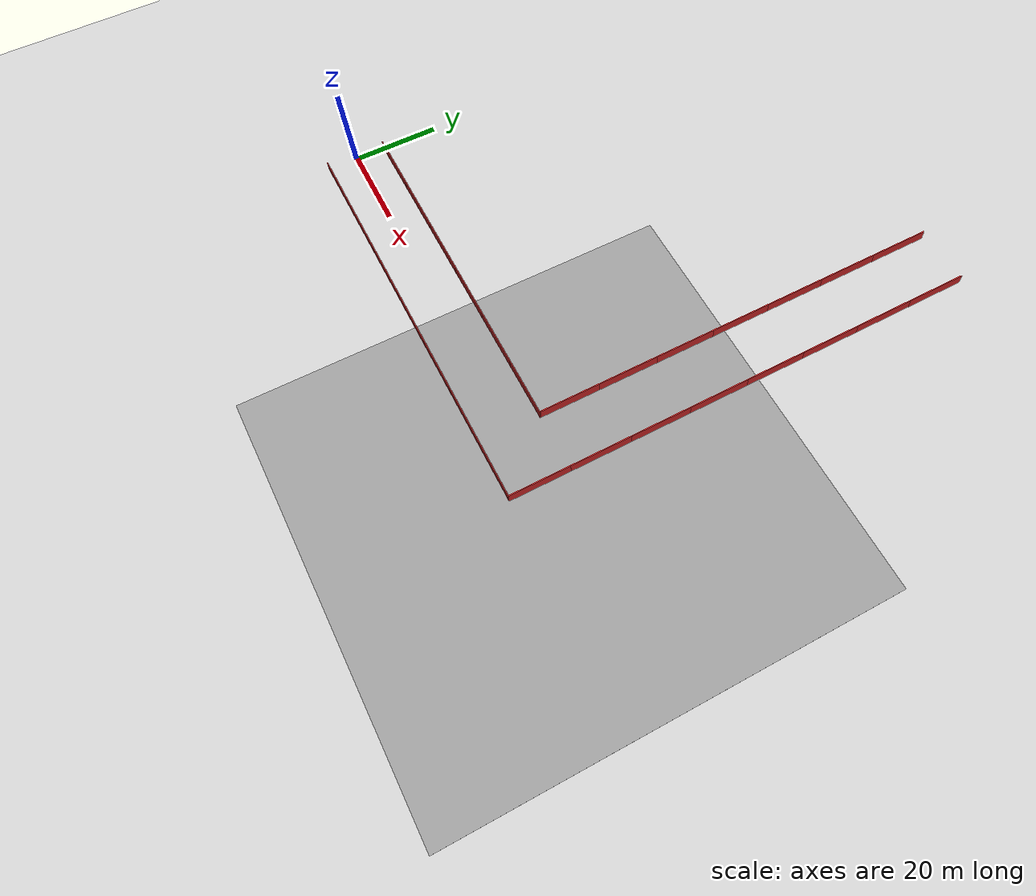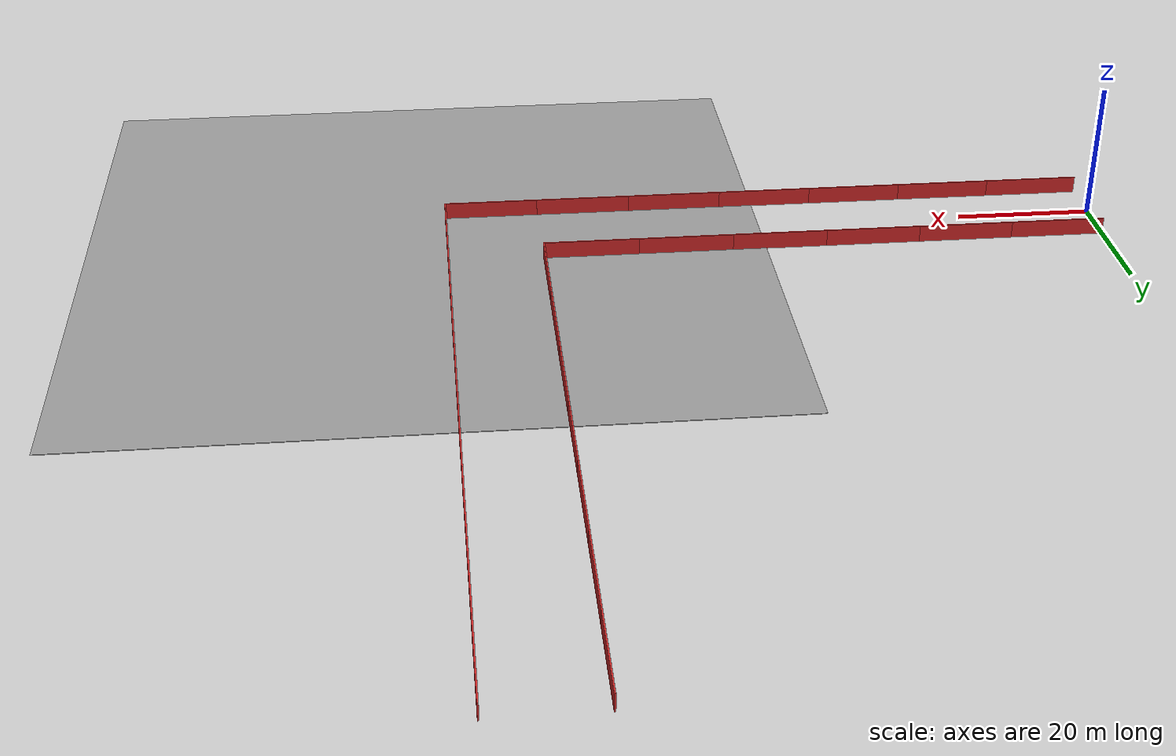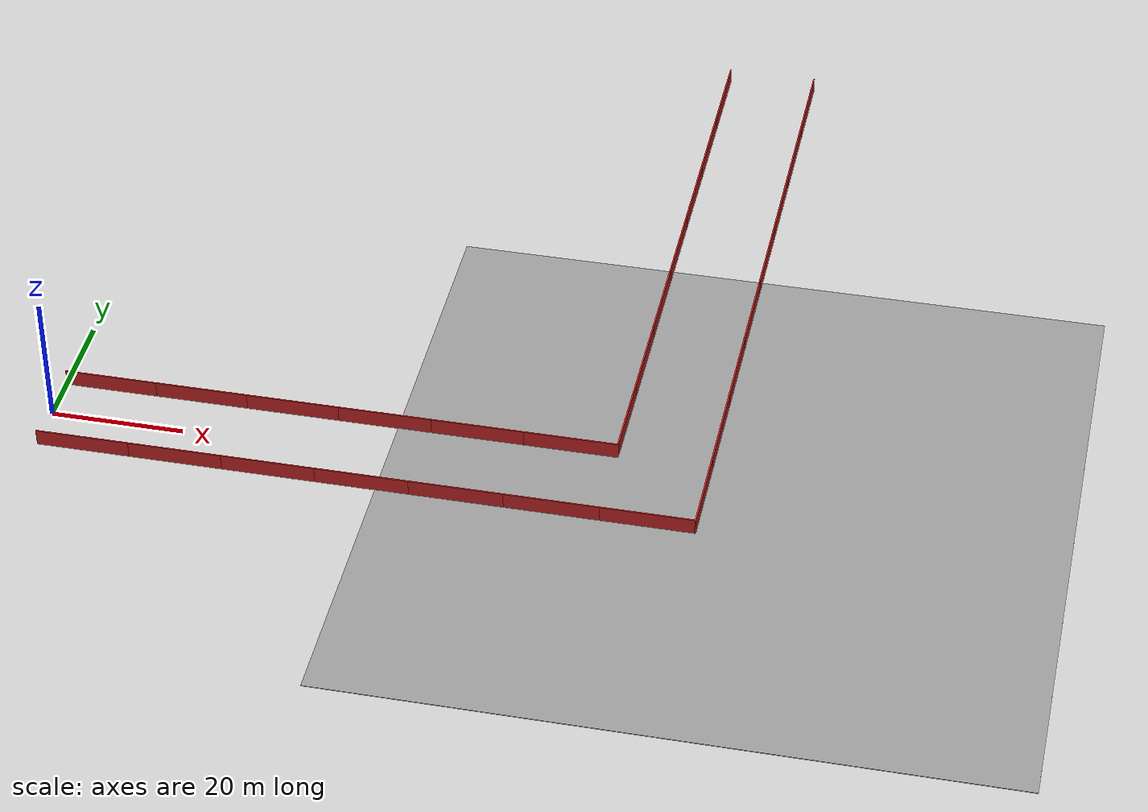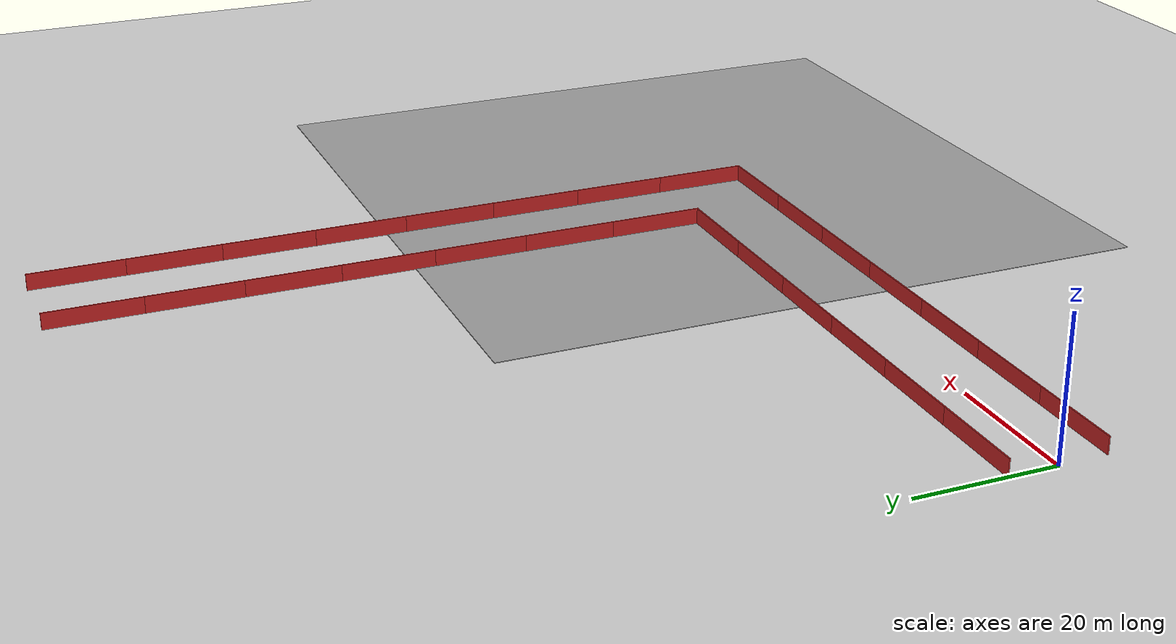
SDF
<sdf version="1.4">
 <world name="default">
  <model name="staright_14m">
   <link name="Wall_26">
    <collision name="Wall_26_Collision">
     <geometry><box><size>14 0.2 2.5</size></box></geometry>
     <pose>0 0 1.25 0 -0 0</pose>
    </collision>
    <visual name="Wall_26_Visual">
     <pose>0 0 1.25 0 -0 0</pose>
     <geometry><box><size>14 0.2 2.5</size></box></geometry>
     <material>
      <script>
       <uri>model://materials/scripts</uri>
       <uri>model://materials/textures</uri>
       <name>vrc/red_wall</name>
      </script>
     </material>
    </visual>
    <velocity_decay><linear>0</linear><angular>0</angular></velocity_decay>
    <pose>0 -7 0 0 -0 0</pose>
   </link>
   <link name="Wall_28">
    <collision name="Wall_28_Collision">
     <geometry><box><size>14 0.2 2.5</size></box></geometry>
     <pose>0 0 1.25 0 -0 0</pose>
    </collision>
    <visual name="Wall_28_Visual">
     <pose>0 0 1.25 0 -0 0</pose>
     <geometry><box><size>14 0.2 2.5</size></box></geometry>
     <material>
      <script>
       <uri>model://materials/scripts</uri>
       <uri>model://materials/textures</uri>
       <name>vrc/red_wall</name>
      </script>
     </material>
    </visual>
    <velocity_decay><linear>0</linear><angular>0</angular></velocity_decay>
    <pose>0 7 0 0 -0 0</pose>
   </link>
   <static>1</static>
   <pose>7 0 0 0 -0 0</pose>
  </model>
  <model name="staright_28m_3">
   <link name="Wall_26">
    <collision name="Wall_26_Collision">
     <geometry><box><size>14 0.2 2.5</size></box></geometry>
     <pose>0 0 1.25 0 -0 0</pose>
    </collision>
    <visual name="Wall_26_Visual">
     <pose>0 0 1.25 0 -0 0</pose>
     <geometry><box><size>14 0.2 2.5</size></box></geometry>
     <material>
      <script>
       <uri>model://materials/scripts</uri>
       <uri>model://materials/textures</uri>
       <name>vrc/red_wall</name>
      </script>
     </material>
    </visual>
    <velocity_decay><linear>0</linear><angular>0</angular></velocity_decay>
    <pose>-7 -7 0 0 -0 0</pose>
   </link>
   <link name="Wall_28">
    <collision name="Wall_28_Collision">
     <geometry><box><size>14 0.2 2.5</size></box></geometry>
     <pose>0 0 1.25 0 -0 0</pose>
    </collision>
    <visual name="Wall_28_Visual">
     <pose>0 0 1.25 0 -0 0</pose>
     <geometry><box><size>14 0.2 2.5</size></box></geometry>
     <material>
      <script>
       <uri>model://materials/scripts</uri>
       <uri>model://materials/textures</uri>
       <name>vrc/red_wall</name>
      </script>
     </material>
    </visual>
    <velocity_decay><linear>0</linear><angular>0</angular></velocity_decay>
    <pose>-7 7 0 0 -0 0</pose>
   </link>
   <static>1</static>
   <link name="Wall_27">
    <collision name="Wall_26_Collision">
     <geometry><box><size>14 0.2 2.5</size></box></geometry>
     <pose>0 0 1.25 0 -0 0</pose>
    </collision>
    <visual name="Wall_26_Visual">
     <pose>0 0 1.25 0 -0 0</pose>
     <geometry><box><size>14 0.2 2.5</size></box></geometry>
     <material>
      <script>
       <uri>model://materials/scripts</uri>
       <uri>model://materials/textures</uri>
       <name>vrc/red_wall</name>
      </script>
     </material>
    </visual>
    <velocity_decay><linear>0</linear><angular>0</angular></velocity_decay>
    <pose>7 -7 0 0 -0 0</pose>
   </link>
   <link name="Wall_29">
    <collision name="Wall_28_Collision">
     <geometry><box><size>14 0.2 2.5</size></box></geometry>
     <pose>0 0 1.25 0 -0 0</pose>
    </collision>
    <visual name="Wall_28_Visual">
     <pose>0 0 1.25 0 -0 0</pose>
     <geometry><box><size>14 0.2 2.5</size></box></geometry>
     <material>
      <script>
       <uri>model://materials/scripts</uri>
       <uri>model://materials/textures</uri>
       <name>vrc/red_wall</name>
      </script>
     </material>
    </visual>
    <velocity_decay><linear>0</linear><angular>0</angular></velocity_decay>
    <pose>7 7 0 0 -0 0</pose>
   </link>
   <static>1</static>
   <pose>91 35 0 0 0 -1.5708</pose>
  </model>
  <model name="staright_28m">
   <link name="Wall_26">
    <collision name="Wall_26_Collision">
     <geometry><box><size>14 0.2 2.5</size></box></geometry>
     <pose>0 0 1.25 0 -0 0</pose>
    </collision>
    <visual name="Wall_26_Visual">
     <pose>0 0 1.25 0 -0 0</pose>
     <geometry><box><size>14 0.2 2.5</size></box></geometry>
     <material>
      <script>
       <uri>model://materials/scripts</uri>
       <uri>model://materials/textures</uri>
       <name>vrc/red_wall</name>
      </script>
     </material>
    </visual>
    <velocity_decay><linear>0</linear><angular>0</angular></velocity_decay>
    <pose>-7 -7 0 0 -0 0</pose>
   </link>
   <link name="Wall_28">
    <collision name="Wall_28_Collision">
     <geometry><box><size>14 0.2 2.5</size></box></geometry>
     <pose>0 0 1.25 0 -0 0</pose>
    </collision>
    <visual name="Wall_28_Visual">
     <pose>0 0 1.25 0 -0 0</pose>
     <geometry><box><size>14 0.2 2.5</size></box></geometry>
     <material>
      <script>
       <uri>model://materials/scripts</uri>
       <uri>model://materials/textures</uri>
       <name>vrc/red_wall</name>
      </script>
     </material>
    </visual>
    <velocity_decay><linear>0</linear><angular>0</angular></velocity_decay>
    <pose>-7 7 0 0 -0 0</pose>
   </link>
   <static>1</static>
   <link name="Wall_27">
    <collision name="Wall_26_Collision">
     <geometry><box><size>14 0.2 2.5</size></box></geometry>
     <pose>0 0 1.25 0 -0 0</pose>
    </collision>
    <visual name="Wall_26_Visual">
     <pose>0 0 1.25 0 -0 0</pose>
     <geometry><box><size>14 0.2 2.5</size></box></geometry>
     <material>
      <script>
       <uri>model://materials/scripts</uri>
       <uri>model://materials/textures</uri>
       <name>vrc/red_wall</name>
      </script>
     </material>
    </visual>
    <velocity_decay><linear>0</linear><angular>0</angular></velocity_decay>
    <pose>7 -7 0 0 -0 0</pose>
   </link>
   <link name="Wall_29">
    <collision name="Wall_28_Collision">
     <geometry><box><size>14 0.2 2.5</size></box></geometry>
     <pose>0 0 1.25 0 -0 0</pose>
    </collision>
    <visual name="Wall_28_Visual">
     <pose>0 0 1.25 0 -0 0</pose>
     <geometry><box><size>14 0.2 2.5</size></box></geometry>
     <material>
      <script>
       <uri>model://materials/scripts</uri>
       <uri>model://materials/textures</uri>
       <name>vrc/red_wall</name>
      </script>
     </material>
    </visual>
    <velocity_decay><linear>0</linear><angular>0</angular></velocity_decay>
    <pose>7 7 0 0 -0 0</pose>
   </link>
   <static>1</static>
   <pose>28 0 0 0 -0 0</pose>
  </model>
  <model name="staright_28m_0">
   <link name="Wall_26">
    <collision name="Wall_26_Collision">
     <geometry><box><size>14 0.2 2.5</size></box></geometry>
     <pose>0 0 1.25 0 -0 0</pose>
    </collision>
    <visual name="Wall_26_Visual">
     <pose>0 0 1.25 0 -0 0</pose>
     <geometry><box><size>14 0.2 2.5</size></box></geometry>
     <material>
      <script>
       <uri>model://materials/scripts</uri>
       <uri>model://materials/textures</uri>
       <name>vrc/red_wall</name>
      </script>
     </material>
    </visual>
    <velocity_decay><linear>0</linear><angular>0</angular></velocity_decay>
    <pose>-7 -7 0 0 -0 0</pose>
   </link>
   <link name="Wall_28">
    <collision name="Wall_28_Collision">
     <geometry><box><size>14 0.2 2.5</size></box></geometry>
     <pose>0 0 1.25 0 -0 0</pose>
    </collision>
    <visual name="Wall_28_Visual">
     <pose>0 0 1.25 0 -0 0</pose>
     <geometry><box><size>14 0.2 2.5</size></box></geometry>
     <material>
      <script>
       <uri>model://materials/scripts</uri>
       <uri>model://materials/textures</uri>
       <name>vrc/red_wall</name>
      </script>
     </material>
    </visual>
    <velocity_decay><linear>0</linear><angular>0</angular></velocity_decay>
    <pose>-7 7 0 0 -0 0</pose>
   </link>
   <static>1</static>
   <link name="Wall_27">
    <collision name="Wall_26_Collision">
     <geometry><box><size>14 0.2 2.5</size></box></geometry>
     <pose>0 0 1.25 0 -0 0</pose>
    </collision>
    <visual name="Wall_26_Visual">
     <pose>0 0 1.25 0 -0 0</pose>
     <geometry><box><size>14 0.2 2.5</size></box></geometry>
     <material>
      <script>
       <uri>model://materials/scripts</uri>
       <uri>model://materials/textures</uri>
       <name>vrc/red_wall</name>
      </script>
     </material>
    </visual>
    <velocity_decay><linear>0</linear><angular>0</angular></velocity_decay>
    <pose>7 -7 0 0 -0 0</pose>
   </link>
   <link name="Wall_29">
    <collision name="Wall_28_Collision">
     <geometry><box><size>14 0.2 2.5</size></box></geometry>
     <pose>0 0 1.25 0 -0 0</pose>
    </collision>
    <visual name="Wall_28_Visual">
     <pose>0 0 1.25 0 -0 0</pose>
     <geometry><box><size>14 0.2 2.5</size></box></geometry>
     <material>
      <script>
       <uri>model://materials/scripts</uri>
       <uri>model://materials/textures</uri>
       <name>vrc/red_wall</name>
      </script>
     </material>
    </visual>
    <velocity_decay><linear>0</linear><angular>0</angular></velocity_decay>
    <pose>7 7 0 0 -0 0</pose>
   </link>
   <static>1</static>
   <pose>56 0 0 0 -0 0</pose>
  </model>
  <model name="right_angle_turn_2">
   <link name="Wall_0">
    <collision name="Wall_0_Collision">
     <geometry><box><size>14.1 0.2 2.5</size></box></geometry>
     <pose>0 0 1.25 0 -0 0</pose>
    </collision>
    <visual name="Wall_0_Visual">
     <pose>0 0 1.25 0 -0 0</pose>
     <geometry><box><size>14.1 0.2 2.5</size></box></geometry>
     <material>
      <script>
       <uri>model://materials/scripts</uri>
       <uri>model://materials/textures</uri>
       <name>vrc/red_wall_x4</name>
      </script>
     </material>
    </visual>
    <velocity_decay><linear>0</linear><angular>0</angular></velocity_decay>
    <pose>0 -6.95 0 0 0 -1.5708</pose>
   </link>
   <link name="Wall_10">
    <collision name="Wall_10_Collision">
     <geometry><box><size>13.8 0.2 2.5</size></box></geometry>
     <pose>0 0 1.25 0 -0 0</pose>
    </collision>
    <visual name="Wall_10_Visual">
     <pose>0 0 1.25 0 -0 0</pose>
     <geometry><box><size>13.8 0.2 2.5</size></box></geometry>
     <material>
      <script>
       <uri>model://materials/scripts</uri>
       <uri>model://materials/textures</uri>
       <name>vrc/red_wall_x4</name>
      </script>
     </material>
    </visual>
    <velocity_decay><linear>0</linear><angular>0</angular></velocity_decay>
    <pose>14 7 0 0 0 -1.5708</pose>
   </link>
   <link name="Wall_2">
    <collision name="Wall_2_Collision">
     <geometry><box><size>13.9 0.2 2.5</size></box></geometry>
     <pose>0 0 1.25 0 -0 0</pose>
    </collision>
    <visual name="Wall_2_Visual">
     <pose>0 0 1.25 0 -0 0</pose>
     <geometry><box><size>13.9 0.2 2.5</size></box></geometry>
     <material>
      <script>
       <uri>model://materials/scripts</uri>
       <uri>model://materials/textures</uri>
       <name>vrc/red_wall_x4</name>
      </script>
     </material>
    </visual>
    <velocity_decay><linear>0</linear><angular>0</angular></velocity_decay>
    <pose>-7.05 0 0 0 -0 3.14159</pose>
   </link>
   <link name="Wall_4">
    <collision name="Wall_4_Collision">
     <geometry><box><size>14.1 0.2 2.5</size></box></geometry>
     <pose>0 0 1.25 0 -0 0</pose>
    </collision>
    <visual name="Wall_4_Visual">
     <pose>0 0 1.25 0 -0 0</pose>
     <geometry><box><size>14.1 0.2 2.5</size></box></geometry>
     <material>
      <script>
       <uri>model://materials/scripts</uri>
       <uri>model://materials/textures</uri>
       <name>vrc/red_wall_x4</name>
      </script>
     </material>
    </visual>
    <velocity_decay><linear>0</linear><angular>0</angular></velocity_decay>
    <pose>14 -6.95 0 0 -0 1.5708</pose>
   </link>
   <link name="Wall_6">
    <collision name="Wall_6_Collision">
     <geometry><box><size>14.1 0.2 2.5</size></box></geometry>
     <pose>0 0 1.25 0 -0 0</pose>
    </collision>
    <visual name="Wall_6_Visual">
     <pose>0 0 1.25 0 -0 0</pose>
     <geometry><box><size>14.1 0.2 2.5</size></box></geometry>
     <material>
      <script>
       <uri>model://materials/scripts</uri>
       <uri>model://materials/textures</uri>
       <name>vrc/red_wall_x4</name>
      </script>
     </material>
    </visual>
    <velocity_decay><linear>0</linear><angular>0</angular></velocity_decay>
    <pose>-6.95 14 0 0 -0 0</pose>
   </link>
   <link name="Wall_8">
    <collision name="Wall_8_Collision">
     <geometry><box><size>14 0.2 2.5</size></box></geometry>
     <pose>0 0 1.25 0 -0 0</pose>
    </collision>
    <visual name="Wall_8_Visual">
     <pose>0 0 1.25 0 -0 0</pose>
     <geometry><box><size>14 0.2 2.5</size></box></geometry>
     <material>
      <script>
       <uri>model://materials/scripts</uri>
       <uri>model://materials/textures</uri>
       <name>vrc/red_wall_x4</name>
      </script>
     </material>
    </visual>
    <velocity_decay><linear>0</linear><angular>0</angular></velocity_decay>
    <pose>7.1 14 0 0 -0 0</pose>
   </link>
   <static>1</static>
   <pose>84 7.00001 0 0 0 -1.57079</pose>
  </model>
  <model name="staright_28m_4">
   <link name="Wall_26">
    <collision name="Wall_26_Collision">
     <geometry><box><size>14 0.2 2.5</size></box></geometry>
     <pose>0 0 1.25 0 -0 0</pose>
    </collision>
    <visual name="Wall_26_Visual">
     <pose>0 0 1.25 0 -0 0</pose>
     <geometry><box><size>14 0.2 2.5</size></box></geometry>
     <material>
      <script>
       <uri>model://materials/scripts</uri>
       <uri>model://materials/textures</uri>
       <name>vrc/red_wall</name>
      </script>
     </material>
    </visual>
    <velocity_decay><linear>0</linear><angular>0</angular></velocity_decay>
    <pose>-7 -7 0 0 -0 0</pose>
   </link>
   <link name="Wall_28">
    <collision name="Wall_28_Collision">
     <geometry><box><size>14 0.2 2.5</size></box></geometry>
     <pose>0 0 1.25 0 -0 0</pose>
    </collision>
    <visual name="Wall_28_Visual">
     <pose>0 0 1.25 0 -0 0</pose>
     <geometry><box><size>14 0.2 2.5</size></box></geometry>
     <material>
      <script>
       <uri>model://materials/scripts</uri>
       <uri>model://materials/textures</uri>
       <name>vrc/red_wall</name>
      </script>
     </material>
    </visual>
    <velocity_decay><linear>0</linear><angular>0</angular></velocity_decay>
    <pose>-7 7 0 0 -0 0</pose>
   </link>
   <static>1</static>
   <link name="Wall_27">
    <collision name="Wall_26_Collision">
     <geometry><box><size>14 0.2 2.5</size></box></geometry>
     <pose>0 0 1.25 0 -0 0</pose>
    </collision>
    <visual name="Wall_26_Visual">
     <pose>0 0 1.25 0 -0 0</pose>
     <geometry><box><size>14 0.2 2.5</size></box></geometry>
     <material>
      <script>
       <uri>model://materials/scripts</uri>
       <uri>model://materials/textures</uri>
       <name>vrc/red_wall</name>
      </script>
     </material>
    </visual>
    <velocity_decay><linear>0</linear><angular>0</angular></velocity_decay>
    <pose>7 -7 0 0 -0 0</pose>
   </link>
   <link name="Wall_29">
    <collision name="Wall_28_Collision">
     <geometry><box><size>14 0.2 2.5</size></box></geometry>
     <pose>0 0 1.25 0 -0 0</pose>
    </collision>
    <visual name="Wall_28_Visual">
     <pose>0 0 1.25 0 -0 0</pose>
     <geometry><box><size>14 0.2 2.5</size></box></geometry>
     <material>
      <script>
       <uri>model://materials/scripts</uri>
       <uri>model://materials/textures</uri>
       <name>vrc/red_wall</name>
      </script>
     </material>
    </visual>
    <velocity_decay><linear>0</linear><angular>0</angular></velocity_decay>
    <pose>7 7 0 0 -0 0</pose>
   </link>
   <static>1</static>
   <pose>91 63 0 0 0 -1.5708</pose>
  </model>
  <model name="staright_28m_7">
   <link name="Wall_26">
    <collision name="Wall_26_Collision">
     <geometry><box><size>14 0.2 2.5</size></box></geometry>
     <pose>0 0 1.25 0 -0 0</pose>
    </collision>
    <visual name="Wall_26_Visual">
     <pose>0 0 1.25 0 -0 0</pose>
     <geometry><box><size>14 0.2 2.5</size></box></geometry>
     <material>
      <script>
       <uri>model://materials/scripts</uri>
       <uri>model://materials/textures</uri>
       <name>vrc/red_wall</name>
      </script>
     </material>
    </visual>
    <velocity_decay><linear>0</linear><angular>0</angular></velocity_decay>
    <pose>-7 -7 0 0 -0 0</pose>
   </link>
   <link name="Wall_28">
    <collision name="Wall_28_Collision">
     <geometry><box><size>14 0.2 2.5</size></box></geometry>
     <pose>0 0 1.25 0 -0 0</pose>
    </collision>
    <visual name="Wall_28_Visual">
     <pose>0 0 1.25 0 -0 0</pose>
     <geometry><box><size>14 0.2 2.5</size></box></geometry>
     <material>
      <script>
       <uri>model://materials/scripts</uri>
       <uri>model://materials/textures</uri>
       <name>vrc/red_wall</name>
      </script>
     </material>
    </visual>
    <velocity_decay><linear>0</linear><angular>0</angular></velocity_decay>
    <pose>-7 7 0 0 -0 0</pose>
   </link>
   <static>1</static>
   <link name="Wall_27">
    <collision name="Wall_26_Collision">
     <geometry><box><size>14 0.2 2.5</size></box></geometry>
     <pose>0 0 1.25 0 -0 0</pose>
    </collision>
    <visual name="Wall_26_Visual">
     <pose>0 0 1.25 0 -0 0</pose>
     <geometry><box><size>14 0.2 2.5</size></box></geometry>
     <material>
      <script>
       <uri>model://materials/scripts</uri>
       <uri>model://materials/textures</uri>
       <name>vrc/red_wall</name>
      </script>
     </material>
    </visual>
    <velocity_decay><linear>0</linear><angular>0</angular></velocity_decay>
    <pose>7 -7 0 0 -0 0</pose>
   </link>
   <link name="Wall_29">
    <collision name="Wall_28_Collision">
     <geometry><box><size>14 0.2 2.5</size></box></geometry>
     <pose>0 0 1.25 0 -0 0</pose>
    </collision>
    <visual name="Wall_28_Visual">
     <pose>0 0 1.25 0 -0 0</pose>
     <geometry><box><size>14 0.2 2.5</size></box></geometry>
     <material>
      <script>
       <uri>model://materials/scripts</uri>
       <uri>model://materials/textures</uri>
       <name>vrc/red_wall</name>
      </script>
     </material>
    </visual>
    <velocity_decay><linear>0</linear><angular>0</angular></velocity_decay>
    <pose>7 7 0 0 -0 0</pose>
   </link>
   <static>1</static>
   <pose>91 91 0 0 0 -1.5708</pose>
  </model>
  <model name="ground_plane">
   <static>1</static>
   <link name="link">
    <collision name="collision">
     <geometry><plane><normal>0 0 1</normal><size>100 100</size></plane></geometry>
     <surface><friction><ode><mu>100</mu><mu2>50</mu2></ode></friction></surface>
    </collision>
    <visual name="visual">
     <cast_shadows>0</cast_shadows>
     <geometry><plane><normal>0 0 1</normal><size>100 100</size></plane></geometry>
     <material>
      <script><uri>file://media/materials/scripts/gazebo.material</uri><name>Gazebo/Grey</name></script>
     </material>
    </visual>
    <velocity_decay><linear>0</linear><angular>0</angular></velocity_decay>
   </link>
   <pose>-99 2 0 0 -0 0</pose>
  </model>
  <model name="ground_plane_7">
   <static>1</static>
   <link name="link">
    <collision name="collision">
     <geometry><plane><normal>0 0 1</normal><size>100 100</size></plane></geometry>
     <surface><friction><ode><mu>100</mu><mu2>50</mu2></ode></friction></surface>
    </collision>
    <visual name="visual">
     <cast_shadows>0</cast_shadows>
     <geometry><plane><normal>0 0 1</normal><size>100 100</size></plane></geometry>
     <material>
      <script><uri>file://media/materials/scripts/gazebo.material</uri><name>Gazebo/Grey</name></script>
     </material>
    </visual>
    <velocity_decay><linear>0</linear><angular>0</angular></velocity_decay>
   </link>
   <pose>101 2 0 0 -0 0</pose>
  </model>
 </world>
</sdf>
